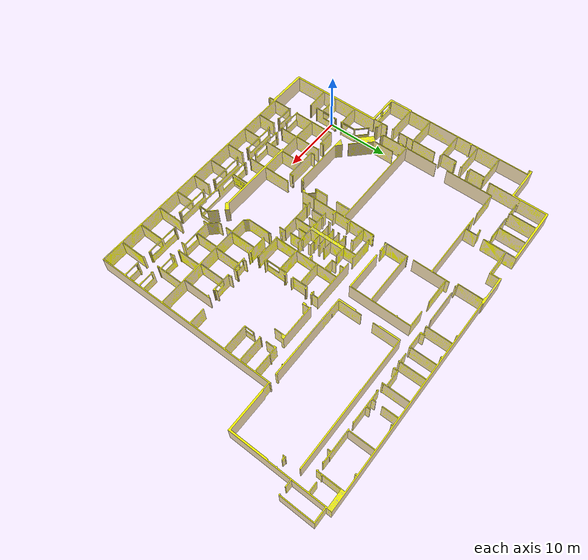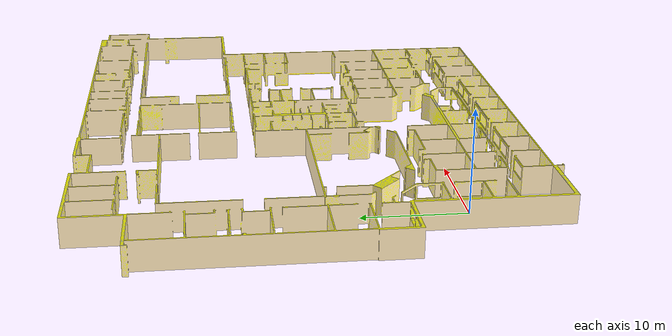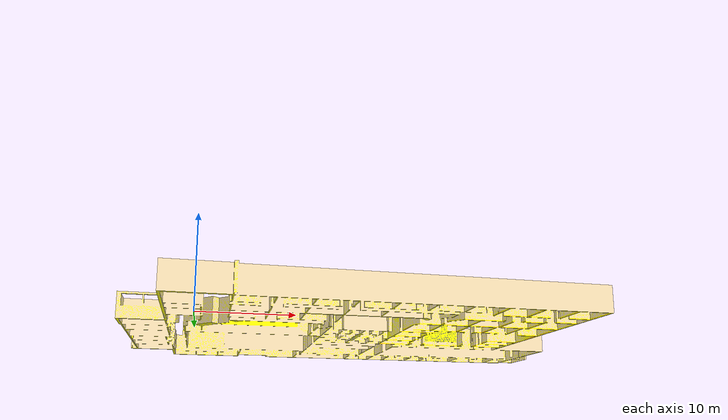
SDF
<?xml version="1.0" ?>
<sdf version="1.8">
  <model name="willow_mini">
    <pose>-3 -9 0 0 0 0</pose>
    <link name="willow_mini_link">

      <collision name="collision">
        <pose>0 0 0 0 0 0</pose>
        <geometry>
          <mesh>
            <uri>meshes/willow_mini.stl</uri>
            <scale>1 1 1</scale>
          </mesh>
        </geometry>
      </collision>

      <visual name="visual">
        <pose>0 0 0 0 0 0</pose>
        <geometry>
          <mesh>
            <uri>meshes/willow_mini.dae</uri>
            <scale>1 1 1</scale>
          </mesh>
        </geometry>
      </visual>

    </link>
  </model>
</sdf>
